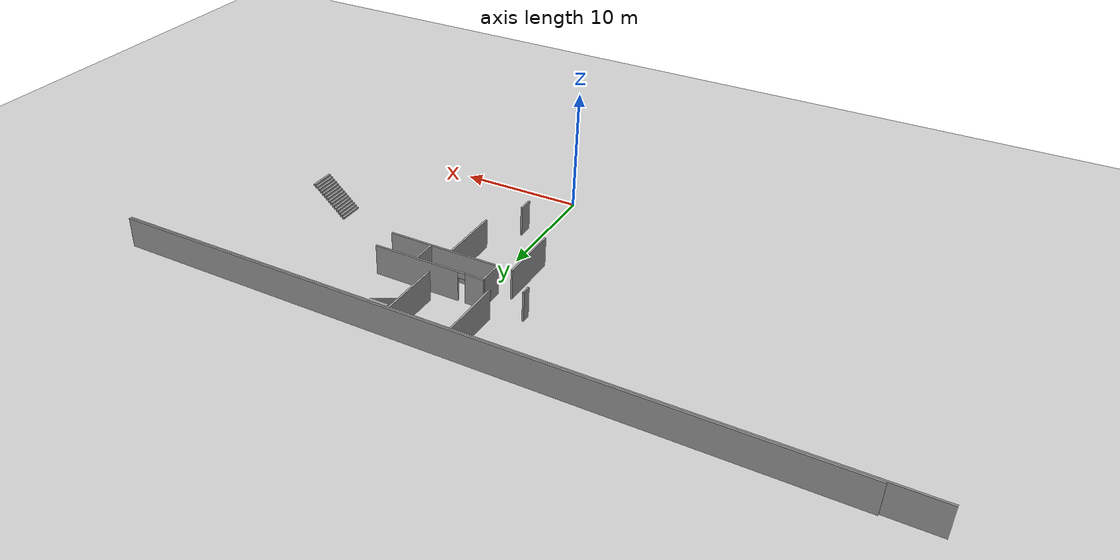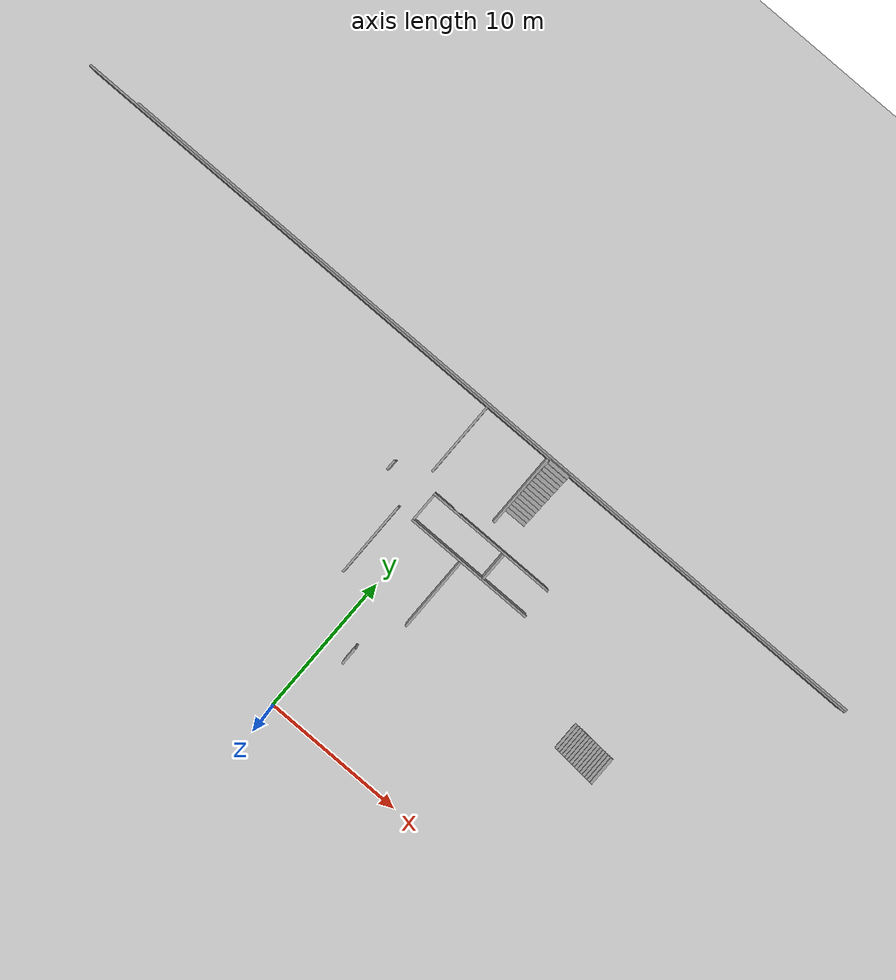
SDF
<sdf version="1.6">
 <world name="default">
  <model name="ground_plane">
   <static>1</static>
   <link name="link">
    <collision name="collision">
     <geometry><plane><normal>0 0 1</normal><size>100 100</size></plane></geometry>
     <surface><friction><ode><mu>100</mu><mu2>50</mu2></ode></friction></surface>
    </collision>
    <visual name="visual">
     <cast_shadows>0</cast_shadows>
     <geometry><plane><normal>0 0 1</normal><size>100 100</size></plane></geometry>
     <material>
      <script><uri>file://media/materials/scripts/gazebo.material</uri><name>Gazebo/Grey</name></script>
     </material>
    </visual>
   </link>
  </model>
  <model name="se1floor1">
   <pose>-5.19256 -0.852459 0 0 -0 0</pose>
   <link name="Stairs_1">
    <visual name="Stairs_1_Visual_0">
     <pose>9.09407 19.8083 0.083333 0 -0 -3.14159</pose>
     <geometry><box><size>1.5586 0.281214 0.166667</size></box></geometry>
     <material>
      <script><uri>file://media/materials/scripts/gazebo.material</uri><name>Gazebo/Grey</name></script>
      <ambient>1 1 1 1</ambient>
     </material>
     <meta><layer>0</layer></meta>
    </visual>
    <collision name="Stairs_1_Collision_0">
     <geometry><box><size>1.5586 0.281214 0.166667</size></box></geometry>
     <pose>9.09407 19.8083 0.083333 0 -0 -3.14159</pose>
    </collision>
    <visual name="Stairs_1_Visual_1">
     <pose>9.09407 20.0895 0.25 0 -0 -3.14159</pose>
     <geometry><box><size>1.5586 0.281214 0.166667</size></box></geometry>
     <material>
      <script><uri>file://media/materials/scripts/gazebo.material</uri><name>Gazebo/Grey</name></script>
      <ambient>1 1 1 1</ambient>
     </material>
     <meta><layer>0</layer></meta>
    </visual>
    <collision name="Stairs_1_Collision_1">
     <geometry><box><size>1.5586 0.281214 0.166667</size></box></geometry>
     <pose>9.09407 20.0895 0.25 0 -0 -3.14159</pose>
    </collision>
    <visual name="Stairs_1_Visual_2">
     <pose>9.09407 20.3707 0.416667 0 -0 -3.14159</pose>
     <geometry><box><size>1.5586 0.281214 0.166667</size></box></geometry>
     <material>
      <script><uri>file://media/materials/scripts/gazebo.material</uri><name>Gazebo/Grey</name></script>
      <ambient>1 1 1 1</ambient>
     </material>
     <meta><layer>0</layer></meta>
    </visual>
    <collision name="Stairs_1_Collision_2">
     <geometry><box><size>1.5586 0.281214 0.166667</size></box></geometry>
     <pose>9.09407 20.3707 0.416667 0 -0 -3.14159</pose>
    </collision>
    <visual name="Stairs_1_Visual_3">
     <pose>9.09407 20.6519 0.583333 0 -0 -3.14159</pose>
     <geometry><box><size>1.5586 0.281214 0.166667</size></box></geometry>
     <material>
      <script><uri>file://media/materials/scripts/gazebo.material</uri><name>Gazebo/Grey</name></script>
      <ambient>1 1 1 1</ambient>
     </material>
     <meta><layer>0</layer></meta>
    </visual>
    <collision name="Stairs_1_Collision_3">
     <geometry><box><size>1.5586 0.281214 0.166667</size></box></geometry>
     <pose>9.09407 20.6519 0.583333 0 -0 -3.14159</pose>
    </collision>
    <visual name="Stairs_1_Visual_4">
     <pose>9.09407 20.9331 0.75 0 -0 -3.14159</pose>
     <geometry><box><size>1.5586 0.281214 0.166667</size></box></geometry>
     <material>
      <script><uri>file://media/materials/scripts/gazebo.material</uri><name>Gazebo/Grey</name></script>
      <ambient>1 1 1 1</ambient>
     </material>
     <meta><layer>0</layer></meta>
    </visual>
    <collision name="Stairs_1_Collision_4">
     <geometry><box><size>1.5586 0.281214 0.166667</size></box></geometry>
     <pose>9.09407 20.9331 0.75 0 -0 -3.14159</pose>
    </collision>
    <visual name="Stairs_1_Visual_5">
     <pose>9.09407 21.2144 0.916667 0 -0 -3.14159</pose>
     <geometry><box><size>1.5586 0.281214 0.166667</size></box></geometry>
     <material>
      <script><uri>file://media/materials/scripts/gazebo.material</uri><name>Gazebo/Grey</name></script>
      <ambient>1 1 1 1</ambient>
     </material>
     <meta><layer>0</layer></meta>
    </visual>
    <collision name="Stairs_1_Collision_5">
     <geometry><box><size>1.5586 0.281214 0.166667</size></box></geometry>
     <pose>9.09407 21.2144 0.916667 0 -0 -3.14159</pose>
    </collision>
    <visual name="Stairs_1_Visual_6">
     <pose>9.09407 21.4956 1.08333 0 -0 -3.14159</pose>
     <geometry><box><size>1.5586 0.281214 0.166667</size></box></geometry>
     <material>
      <script><uri>file://media/materials/scripts/gazebo.material</uri><name>Gazebo/Grey</name></script>
      <ambient>1 1 1 1</ambient>
     </material>
     <meta><layer>0</layer></meta>
    </visual>
    <collision name="Stairs_1_Collision_6">
     <geometry><box><size>1.5586 0.281214 0.166667</size></box></geometry>
     <pose>9.09407 21.4956 1.08333 0 -0 -3.14159</pose>
    </collision>
    <visual name="Stairs_1_Visual_7">
     <pose>9.09407 21.7768 1.25 0 -0 -3.14159</pose>
     <geometry><box><size>1.5586 0.281214 0.166667</size></box></geometry>
     <material>
      <script><uri>file://media/materials/scripts/gazebo.material</uri><name>Gazebo/Grey</name></script>
      <ambient>1 1 1 1</ambient>
     </material>
     <meta><layer>0</layer></meta>
    </visual>
    <collision name="Stairs_1_Collision_7">
     <geometry><box><size>1.5586 0.281214 0.166667</size></box></geometry>
     <pose>9.09407 21.7768 1.25 0 -0 -3.14159</pose>
    </collision>
    <visual name="Stairs_1_Visual_8">
     <pose>9.09407 22.058 1.41667 0 -0 -3.14159</pose>
     <geometry><box><size>1.5586 0.281214 0.166667</size></box></geometry>
     <material>
      <script><uri>file://media/materials/scripts/gazebo.material</uri><name>Gazebo/Grey</name></script>
      <ambient>1 1 1 1</ambient>
     </material>
     <meta><layer>0</layer></meta>
    </visual>
    <collision name="Stairs_1_Collision_8">
     <geometry><box><size>1.5586 0.281214 0.166667</size></box></geometry>
     <pose>9.09407 22.058 1.41667 0 -0 -3.14159</pose>
    </collision>
    <visual name="Stairs_1_Visual_9">
     <pose>9.09407 22.3392 1.58333 0 -0 -3.14159</pose>
     <geometry><box><size>1.5586 0.281214 0.166667</size></box></geometry>
     <material>
      <script><uri>file://media/materials/scripts/gazebo.material</uri><name>Gazebo/Grey</name></script>
      <ambient>1 1 1 1</ambient>
     </material>
     <meta><layer>0</layer></meta>
    </visual>
    <collision name="Stairs_1_Collision_9">
     <geometry><box><size>1.5586 0.281214 0.166667</size></box></geometry>
     <pose>9.09407 22.3392 1.58333 0 -0 -3.14159</pose>
    </collision>
    <visual name="Stairs_1_Visual_10">
     <pose>9.09407 22.6204 1.75 0 -0 -3.14159</pose>
     <geometry><box><size>1.5586 0.281214 0.166667</size></box></geometry>
     <material>
      <script><uri>file://media/materials/scripts/gazebo.material</uri><name>Gazebo/Grey</name></script>
      <ambient>1 1 1 1</ambient>
     </material>
     <meta><layer>0</layer></meta>
    </visual>
    <collision name="Stairs_1_Collision_10">
     <geometry><box><size>1.5586 0.281214 0.166667</size></box></geometry>
     <pose>9.09407 22.6204 1.75 0 -0 -3.14159</pose>
    </collision>
    <visual name="Stairs_1_Visual_11">
     <pose>9.09407 22.9016 1.91667 0 -0 -3.14159</pose>
     <geometry><box><size>1.5586 0.281214 0.166667</size></box></geometry>
     <material>
      <script><uri>file://media/materials/scripts/gazebo.material</uri><name>Gazebo/Grey</name></script>
      <ambient>1 1 1 1</ambient>
     </material>
     <meta><layer>0</layer></meta>
    </visual>
    <collision name="Stairs_1_Collision_11">
     <geometry><box><size>1.5586 0.281214 0.166667</size></box></geometry>
     <pose>9.09407 22.9016 1.91667 0 -0 -3.14159</pose>
    </collision>
    <visual name="Stairs_1_Visual_12">
     <pose>9.09407 23.1829 2.08333 0 -0 -3.14159</pose>
     <geometry><box><size>1.5586 0.281214 0.166667</size></box></geometry>
     <material>
      <script><uri>file://media/materials/scripts/gazebo.material</uri><name>Gazebo/Grey</name></script>
      <ambient>1 1 1 1</ambient>
     </material>
     <meta><layer>0</layer></meta>
    </visual>
    <collision name="Stairs_1_Collision_12">
     <geometry><box><size>1.5586 0.281214 0.166667</size></box></geometry>
     <pose>9.09407 23.1829 2.08333 0 -0 -3.14159</pose>
    </collision>
    <visual name="Stairs_1_Visual_13">
     <pose>9.09407 23.4641 2.25 0 -0 -3.14159</pose>
     <geometry><box><size>1.5586 0.281214 0.166667</size></box></geometry>
     <material>
      <script><uri>file://media/materials/scripts/gazebo.material</uri><name>Gazebo/Grey</name></script>
      <ambient>1 1 1 1</ambient>
     </material>
     <meta><layer>0</layer></meta>
    </visual>
    <collision name="Stairs_1_Collision_13">
     <geometry><box><size>1.5586 0.281214 0.166667</size></box></geometry>
     <pose>9.09407 23.4641 2.25 0 -0 -3.14159</pose>
    </collision>
    <visual name="Stairs_1_Visual_14">
     <pose>9.09407 23.7453 2.41667 0 -0 -3.14159</pose>
     <geometry><box><size>1.5586 0.281214 0.166667</size></box></geometry>
     <material>
      <script><uri>file://media/materials/scripts/gazebo.material</uri><name>Gazebo/Grey</name></script>
      <ambient>1 1 1 1</ambient>
     </material>
     <meta><layer>0</layer></meta>
    </visual>
    <collision name="Stairs_1_Collision_14">
     <geometry><box><size>1.5586 0.281214 0.166667</size></box></geometry>
     <pose>9.09407 23.7453 2.41667 0 -0 -3.14159</pose>
    </collision>
   </link>
   <link name="Stairs_2">
    <visual name="Stairs_2_Visual_0">
     <pose>20.4775 11.3856 0.083333 0 -0 1.5708</pose>
     <geometry><box><size>2.01727 0.190773 0.166667</size></box></geometry>
     <material>
      <script><uri>file://media/materials/scripts/gazebo.material</uri><name>Gazebo/Grey</name></script>
      <ambient>1 1 1 1</ambient>
     </material>
     <meta><layer>0</layer></meta>
    </visual>
    <collision name="Stairs_2_Collision_0">
     <geometry><box><size>2.01727 0.190773 0.166667</size></box></geometry>
     <pose>20.4775 11.3856 0.083333 0 -0 1.5708</pose>
    </collision>
    <visual name="Stairs_2_Visual_1">
     <pose>20.6683 11.3856 0.25 0 -0 1.5708</pose>
     <geometry><box><size>2.01727 0.190773 0.166667</size></box></geometry>
     <material>
      <script><uri>file://media/materials/scripts/gazebo.material</uri><name>Gazebo/Grey</name></script>
      <ambient>1 1 1 1</ambient>
     </material>
     <meta><layer>0</layer></meta>
    </visual>
    <collision name="Stairs_2_Collision_1">
     <geometry><box><size>2.01727 0.190773 0.166667</size></box></geometry>
     <pose>20.6683 11.3856 0.25 0 -0 1.5708</pose>
    </collision>
    <visual name="Stairs_2_Visual_2">
     <pose>20.8591 11.3856 0.416667 0 -0 1.5708</pose>
     <geometry><box><size>2.01727 0.190773 0.166667</size></box></geometry>
     <material>
      <script><uri>file://media/materials/scripts/gazebo.material</uri><name>Gazebo/Grey</name></script>
      <ambient>1 1 1 1</ambient>
     </material>
     <meta><layer>0</layer></meta>
    </visual>
    <collision name="Stairs_2_Collision_2">
     <geometry><box><size>2.01727 0.190773 0.166667</size></box></geometry>
     <pose>20.8591 11.3856 0.416667 0 -0 1.5708</pose>
    </collision>
    <visual name="Stairs_2_Visual_3">
     <pose>21.0498 11.3856 0.583333 0 -0 1.5708</pose>
     <geometry><box><size>2.01727 0.190773 0.166667</size></box></geometry>
     <material>
      <script><uri>file://media/materials/scripts/gazebo.material</uri><name>Gazebo/Grey</name></script>
      <ambient>1 1 1 1</ambient>
     </material>
     <meta><layer>0</layer></meta>
    </visual>
    <collision name="Stairs_2_Collision_3">
     <geometry><box><size>2.01727 0.190773 0.166667</size></box></geometry>
     <pose>21.0498 11.3856 0.583333 0 -0 1.5708</pose>
    </collision>
    <visual name="Stairs_2_Visual_4">
     <pose>21.2406 11.3856 0.75 0 -0 1.5708</pose>
     <geometry><box><size>2.01727 0.190773 0.166667</size></box></geometry>
     <material>
      <script><uri>file://media/materials/scripts/gazebo.material</uri><name>Gazebo/Grey</name></script>
      <ambient>1 1 1 1</ambient>
     </material>
     <meta><layer>0</layer></meta>
    </visual>
    <collision name="Stairs_2_Collision_4">
     <geometry><box><size>2.01727 0.190773 0.166667</size></box></geometry>
     <pose>21.2406 11.3856 0.75 0 -0 1.5708</pose>
    </collision>
    <visual name="Stairs_2_Visual_5">
     <pose>21.4314 11.3856 0.916667 0 -0 1.5708</pose>
     <geometry><box><size>2.01727 0.190773 0.166667</size></box></geometry>
     <material>
      <script><uri>file://media/materials/scripts/gazebo.material</uri><name>Gazebo/Grey</name></script>
      <ambient>1 1 1 1</ambient>
     </material>
     <meta><layer>0</layer></meta>
    </visual>
    <collision name="Stairs_2_Collision_5">
     <geometry><box><size>2.01727 0.190773 0.166667</size></box></geometry>
     <pose>21.4314 11.3856 0.916667 0 -0 1.5708</pose>
    </collision>
    <visual name="Stairs_2_Visual_6">
     <pose>21.6222 11.3856 1.08333 0 -0 1.5708</pose>
     <geometry><box><size>2.01727 0.190773 0.166667</size></box></geometry>
     <material>
      <script><uri>file://media/materials/scripts/gazebo.material</uri><name>Gazebo/Grey</name></script>
      <ambient>1 1 1 1</ambient>
     </material>
     <meta><layer>0</layer></meta>
    </visual>
    <collision name="Stairs_2_Collision_6">
     <geometry><box><size>2.01727 0.190773 0.166667</size></box></geometry>
     <pose>21.6222 11.3856 1.08333 0 -0 1.5708</pose>
    </collision>
    <visual name="Stairs_2_Visual_7">
     <pose>21.8129 11.3856 1.25 0 -0 1.5708</pose>
     <geometry><box><size>2.01727 0.190773 0.166667</size></box></geometry>
     <material>
      <script><uri>file://media/materials/scripts/gazebo.material</uri><name>Gazebo/Grey</name></script>
      <ambient>1 1 1 1</ambient>
     </material>
     <meta><layer>0</layer></meta>
    </visual>
    <collision name="Stairs_2_Collision_7">
     <geometry><box><size>2.01727 0.190773 0.166667</size></box></geometry>
     <pose>21.8129 11.3856 1.25 0 -0 1.5708</pose>
    </collision>
    <visual name="Stairs_2_Visual_8">
     <pose>22.0037 11.3856 1.41667 0 -0 1.5708</pose>
     <geometry><box><size>2.01727 0.190773 0.166667</size></box></geometry>
     <material>
      <script><uri>file://media/materials/scripts/gazebo.material</uri><name>Gazebo/Grey</name></script>
      <ambient>1 1 1 1</ambient>
     </material>
     <meta><layer>0</layer></meta>
    </visual>
    <collision name="Stairs_2_Collision_8">
     <geometry><box><size>2.01727 0.190773 0.166667</size></box></geometry>
     <pose>22.0037 11.3856 1.41667 0 -0 1.5708</pose>
    </collision>
    <visual name="Stairs_2_Visual_9">
     <pose>22.1945 11.3856 1.58333 0 -0 1.5708</pose>
     <geometry><box><size>2.01727 0.190773 0.166667</size></box></geometry>
     <material>
      <script><uri>file://media/materials/scripts/gazebo.material</uri><name>Gazebo/Grey</name></script>
      <ambient>1 1 1 1</ambient>
     </material>
     <meta><layer>0</layer></meta>
    </visual>
    <collision name="Stairs_2_Collision_9">
     <geometry><box><size>2.01727 0.190773 0.166667</size></box></geometry>
     <pose>22.1945 11.3856 1.58333 0 -0 1.5708</pose>
    </collision>
    <visual name="Stairs_2_Visual_10">
     <pose>22.3853 11.3856 1.75 0 -0 1.5708</pose>
     <geometry><box><size>2.01727 0.190773 0.166667</size></box></geometry>
     <material>
      <script><uri>file://media/materials/scripts/gazebo.material</uri><name>Gazebo/Grey</name></script>
      <ambient>1 1 1 1</ambient>
     </material>
     <meta><layer>0</layer></meta>
    </visual>
    <collision name="Stairs_2_Collision_10">
     <geometry><box><size>2.01727 0.190773 0.166667</size></box></geometry>
     <pose>22.3853 11.3856 1.75 0 -0 1.5708</pose>
    </collision>
    <visual name="Stairs_2_Visual_11">
     <pose>22.576 11.3856 1.91667 0 -0 1.5708</pose>
     <geometry><box><size>2.01727 0.190773 0.166667</size></box></geometry>
     <material>
      <script><uri>file://media/materials/scripts/gazebo.material</uri><name>Gazebo/Grey</name></script>
      <ambient>1 1 1 1</ambient>
     </material>
     <meta><layer>0</layer></meta>
    </visual>
    <collision name="Stairs_2_Collision_11">
     <geometry><box><size>2.01727 0.190773 0.166667</size></box></geometry>
     <pose>22.576 11.3856 1.91667 0 -0 1.5708</pose>
    </collision>
    <visual name="Stairs_2_Visual_12">
     <pose>22.7668 11.3856 2.08333 0 -0 1.5708</pose>
     <geometry><box><size>2.01727 0.190773 0.166667</size></box></geometry>
     <material>
      <script><uri>file://media/materials/scripts/gazebo.material</uri><name>Gazebo/Grey</name></script>
      <ambient>1 1 1 1</ambient>
     </material>
     <meta><layer>0</layer></meta>
    </visual>
    <collision name="Stairs_2_Collision_12">
     <geometry><box><size>2.01727 0.190773 0.166667</size></box></geometry>
     <pose>22.7668 11.3856 2.08333 0 -0 1.5708</pose>
    </collision>
    <visual name="Stairs_2_Visual_13">
     <pose>22.9576 11.3856 2.25 0 -0 1.5708</pose>
     <geometry><box><size>2.01727 0.190773 0.166667</size></box></geometry>
     <material>
      <script><uri>file://media/materials/scripts/gazebo.material</uri><name>Gazebo/Grey</name></script>
      <ambient>1 1 1 1</ambient>
     </material>
     <meta><layer>0</layer></meta>
    </visual>
    <collision name="Stairs_2_Collision_13">
     <geometry><box><size>2.01727 0.190773 0.166667</size></box></geometry>
     <pose>22.9576 11.3856 2.25 0 -0 1.5708</pose>
    </collision>
    <visual name="Stairs_2_Visual_14">
     <pose>23.1484 11.3856 2.41667 0 -0 1.5708</pose>
     <geometry><box><size>2.01727 0.190773 0.166667</size></box></geometry>
     <material>
      <script><uri>file://media/materials/scripts/gazebo.material</uri><name>Gazebo/Grey</name></script>
      <ambient>1 1 1 1</ambient>
     </material>
     <meta><layer>0</layer></meta>
    </visual>
    <collision name="Stairs_2_Collision_14">
     <geometry><box><size>2.01727 0.190773 0.166667</size></box></geometry>
     <pose>23.1484 11.3856 2.41667 0 -0 1.5708</pose>
    </collision>
   </link>
   <link name="Wall_12">
    <collision name="Wall_12_Collision">
     <geometry><box><size>57.5 0.15 2.5</size></box></geometry>
     <pose>0 0 1.25 0 -0 0</pose>
    </collision>
    <visual name="Wall_12_Visual">
     <pose>0 0 1.25 0 -0 0</pose>
     <geometry><box><size>57.5 0.15 2.5</size></box></geometry>
     <material>
      <script><uri>file://media/materials/scripts/gazebo.material</uri><name>Gazebo/Grey</name></script>
      <ambient>1 1 1 1</ambient>
     </material>
     <meta><layer>0</layer></meta>
    </visual>
    <pose>3.475 24.025 0 0 -0 3.14159</pose>
   </link>
   <link name="Wall_2">
    <collision name="Wall_2_Collision">
     <geometry><box><size>1.25 0.15 2.5</size></box></geometry>
     <pose>0 0 1.25 0 -0 0</pose>
    </collision>
    <visual name="Wall_2_Visual">
     <pose>0 0 1.25 0 -0 0</pose>
     <geometry><box><size>1.25 0.15 2.5</size></box></geometry>
     <material>
      <script><uri>file://media/materials/scripts/gazebo.material</uri><name>Gazebo/Grey</name></script>
      <ambient>1 1 1 1</ambient>
     </material>
     <meta><layer>0</layer></meta>
    </visual>
    <pose>6.75 6.625 0 0 0 -1.5708</pose>
   </link>
   <link name="Wall_22">
    <pose>8.84217 17.6453 0 0 -0 3.14159</pose>
    <visual name="Wall_22_Visual_0">
     <pose>-1.06517 0 1.25 0 -0 0</pose>
     <geometry><box><size>7.11966 0.15 2.5</size></box></geometry>
     <material>
      <script><uri>file://media/materials/scripts/gazebo.material</uri><name>Gazebo/Grey</name></script>
      <ambient>1 1 1 1</ambient>
     </material>
     <meta><layer>0</layer></meta>
    </visual>
    <collision name="Wall_22_Collision_0">
     <geometry><box><size>7.11966 0.15 2.5</size></box></geometry>
     <pose>-1.06517 0 1.25 0 -0 0</pose>
    </collision>
    <visual name="Wall_22_Visual_1">
     <pose>3.84451 0 1.25 0 -0 0</pose>
     <geometry><box><size>1.56097 0.15 2.5</size></box></geometry>
     <material>
      <script><uri>file://media/materials/scripts/gazebo.material</uri><name>Gazebo/Grey</name></script>
      <ambient>1 1 1 1</ambient>
     </material>
     <meta><layer>0</layer></meta>
    </visual>
    <collision name="Wall_22_Collision_1">
     <geometry><box><size>1.56097 0.15 2.5</size></box></geometry>
     <pose>3.84451 0 1.25 0 -0 0</pose>
    </collision>
    <visual name="Wall_22_Visual_2">
     <pose>2.77934 0 2.25 0 -0 0</pose>
     <geometry><box><size>0.569375 0.15 0.5</size></box></geometry>
     <material>
      <script><uri>file://media/materials/scripts/gazebo.material</uri><name>Gazebo/Grey</name></script>
      <ambient>1 1 1 1</ambient>
     </material>
     <meta><layer>0</layer></meta>
    </visual>
    <collision name="Wall_22_Collision_2">
     <geometry><box><size>0.569375 0.15 0.5</size></box></geometry>
     <pose>2.77934 0 2.25 0 -0 0</pose>
    </collision>
   </link>
   <link name="Wall_23">
    <collision name="Wall_23_Collision">
     <geometry><box><size>2.25 0.15 2.5</size></box></geometry>
     <pose>0 0 1.25 0 -0 0</pose>
    </collision>
    <visual name="Wall_23_Visual">
     <pose>0 0 1.25 0 -0 0</pose>
     <geometry><box><size>2.25 0.15 2.5</size></box></geometry>
     <material>
      <script><uri>file://media/materials/scripts/gazebo.material</uri><name>Gazebo/Grey</name></script>
      <ambient>1 1 1 1</ambient>
     </material>
     <meta><layer>0</layer></meta>
    </visual>
    <pose>4.29217 16.5953 0 0 0 -1.5708</pose>
   </link>
   <link name="Wall_24">
    <collision name="Wall_24_Collision">
     <geometry><box><size>9.25 0.15 2.5</size></box></geometry>
     <pose>0 0 1.25 0 -0 0</pose>
    </collision>
    <visual name="Wall_24_Visual">
     <pose>0 0 1.25 0 -0 0</pose>
     <geometry><box><size>9.25 0.15 2.5</size></box></geometry>
     <material>
      <script><uri>file://media/materials/scripts/gazebo.material</uri><name>Gazebo/Grey</name></script>
      <ambient>1 1 1 1</ambient>
     </material>
     <meta><layer>0</layer></meta>
    </visual>
    <pose>8.84217 15.5453 0 0 -0 0</pose>
   </link>
   <link name="Wall_26">
    <collision name="Wall_26_Collision">
     <geometry><box><size>2 0.15 2.5</size></box></geometry>
     <pose>0 0 1.25 0 -0 0</pose>
    </collision>
    <visual name="Wall_26_Visual">
     <pose>0 0 1.25 0 -0 0</pose>
     <geometry><box><size>2 0.15 2.5</size></box></geometry>
     <material>
      <script><uri>file://media/materials/scripts/gazebo.material</uri><name>Gazebo/Grey</name></script>
      <ambient>1 1 1 1</ambient>
     </material>
     <meta><layer>0</layer></meta>
    </visual>
    <pose>9.93849 16.5675 0 0 0 -1.5708</pose>
   </link>
   <link name="Wall_31">
    <collision name="Wall_31_Collision">
     <geometry><box><size>0.75 0.15 2.5</size></box></geometry>
     <pose>0 0 1.25 0 -0 0</pose>
    </collision>
    <visual name="Wall_31_Visual">
     <pose>0 0 1.25 0 -0 0</pose>
     <geometry><box><size>0.75 0.15 2.5</size></box></geometry>
     <material>
      <script><uri>file://media/materials/scripts/gazebo.material</uri><name>Gazebo/Grey</name></script>
      <ambient>1 1 1 1</ambient>
     </material>
     <meta><layer>0</layer></meta>
    </visual>
    <pose>1.05708 17.2575 0 0 -0 1.5708</pose>
   </link>
   <link name="Wall_43">
    <collision name="Wall_43_Collision">
     <geometry><box><size>5.25 0.15 2.5</size></box></geometry>
     <pose>0 0 1.25 0 -0 0</pose>
    </collision>
    <visual name="Wall_43_Visual">
     <pose>0 0 1.25 0 -0 0</pose>
     <geometry><box><size>5.25 0.15 2.5</size></box></geometry>
     <material>
      <script><uri>file://media/materials/scripts/gazebo.material</uri><name>Gazebo/Grey</name></script>
      <ambient>1 1 1 1</ambient>
     </material>
     <meta><layer>0</layer></meta>
    </visual>
    <pose>8.22641 12.9094 0 0 0 -1.5708</pose>
   </link>
   <link name="Wall_45">
    <collision name="Wall_45_Collision">
     <geometry><box><size>5.25 0.15 2.5</size></box></geometry>
     <pose>0 0 1.25 0 -0 0</pose>
    </collision>
    <visual name="Wall_45_Visual">
     <pose>0 0 1.25 0 -0 0</pose>
     <geometry><box><size>5.25 0.15 2.5</size></box></geometry>
     <material>
      <script><uri>file://media/materials/scripts/gazebo.material</uri><name>Gazebo/Grey</name></script>
      <ambient>1 1 1 1</ambient>
     </material>
     <meta><layer>0</layer></meta>
    </visual>
    <pose>3.09017 12.9629 0 0 0 -1.5708</pose>
   </link>
   <link name="Wall_74">
    <collision name="Wall_74_Collision">
     <geometry><box><size>61.25 0.15 2.5</size></box></geometry>
     <pose>0 0 1.25 0 -0 0</pose>
    </collision>
    <visual name="Wall_74_Visual">
     <pose>0 0 1.25 0 -0 0</pose>
     <geometry><box><size>61.25 0.15 2.5</size></box></geometry>
     <material>
      <script><uri>file://media/materials/scripts/gazebo.material</uri><name>Gazebo/Grey</name></script>
      <ambient>1 1 1 1</ambient>
     </material>
     <meta><layer>0</layer></meta>
    </visual>
    <pose>1.59217 23.8953 0 0 -0 0</pose>
   </link>
   <link name="Wall_92">
    <collision name="Wall_92_Collision">
     <geometry><box><size>5.25 0.15 2.5</size></box></geometry>
     <pose>0 0 1.25 0 -0 0</pose>
    </collision>
    <visual name="Wall_92_Visual">
     <pose>0 0 1.25 0 -0 0</pose>
     <geometry><box><size>5.25 0.15 2.5</size></box></geometry>
     <material>
      <script><uri>file://media/materials/scripts/gazebo.material</uri><name>Gazebo/Grey</name></script>
      <ambient>1 1 1 1</ambient>
     </material>
     <meta><layer>0</layer></meta>
    </visual>
    <pose>3.25068 21.2023 0 0 0 -1.5708</pose>
   </link>
   <link name="Wall_94">
    <collision name="Wall_94_Collision">
     <geometry><box><size>5.25 0.15 2.5</size></box></geometry>
     <pose>0 0 1.25 0 -0 0</pose>
    </collision>
    <visual name="Wall_94_Visual">
     <pose>0 0 1.25 0 -0 0</pose>
     <geometry><box><size>5.25 0.15 2.5</size></box></geometry>
     <material>
      <script><uri>file://media/materials/scripts/gazebo.material</uri><name>Gazebo/Grey</name></script>
      <ambient>1 1 1 1</ambient>
     </material>
     <meta><layer>0</layer></meta>
    </visual>
    <pose>8.17291 21.3093 0 0 0 -1.5708</pose>
   </link>
   <static>1</static>
  </model>
 </world>
</sdf>
